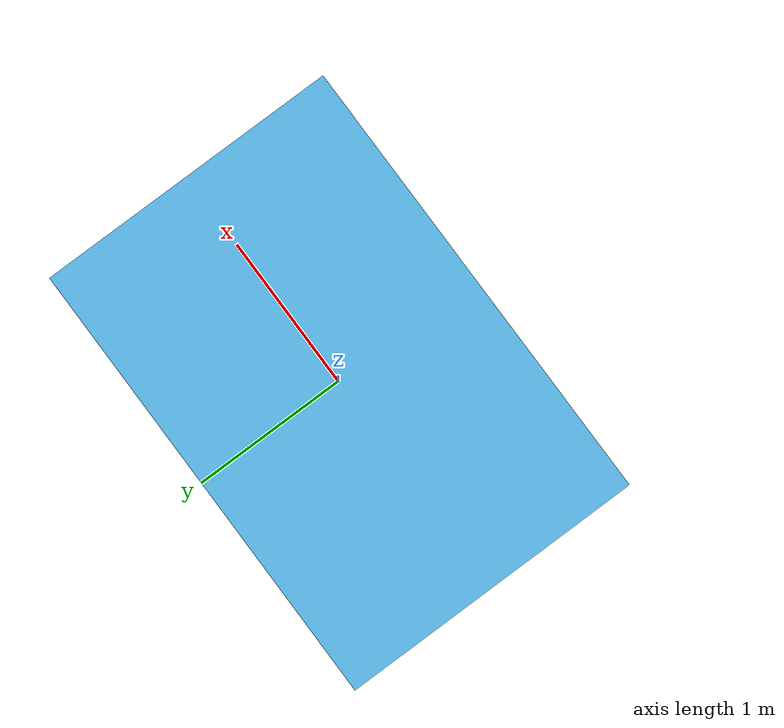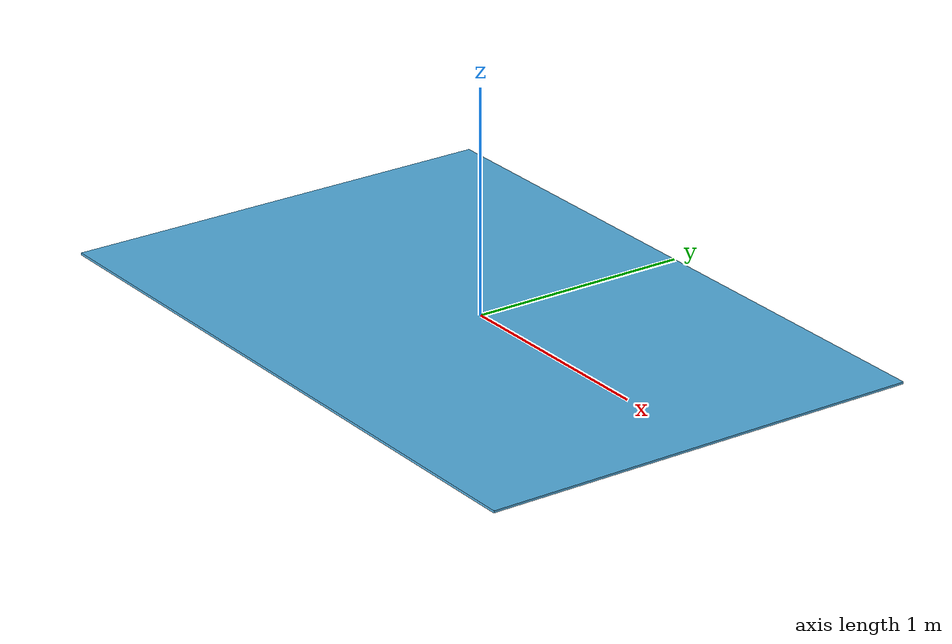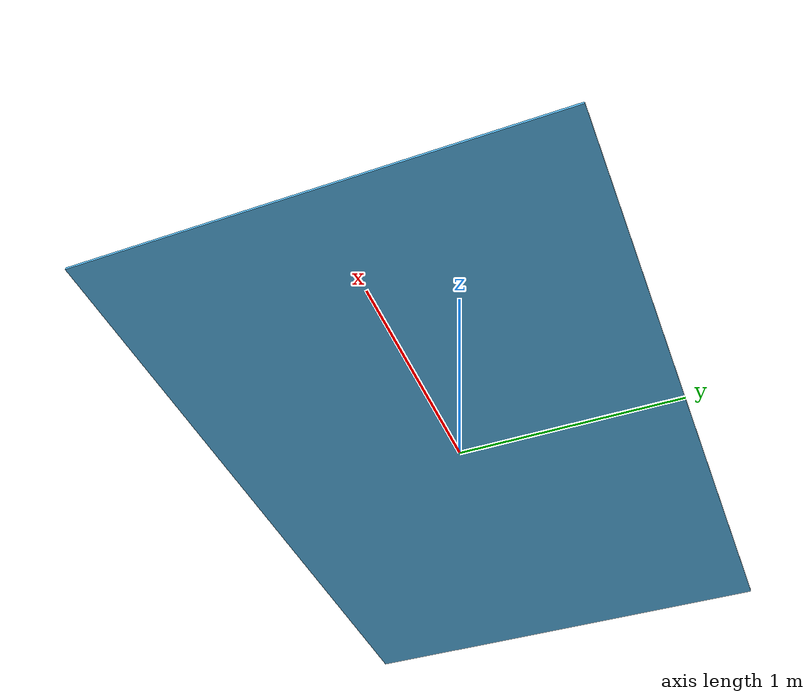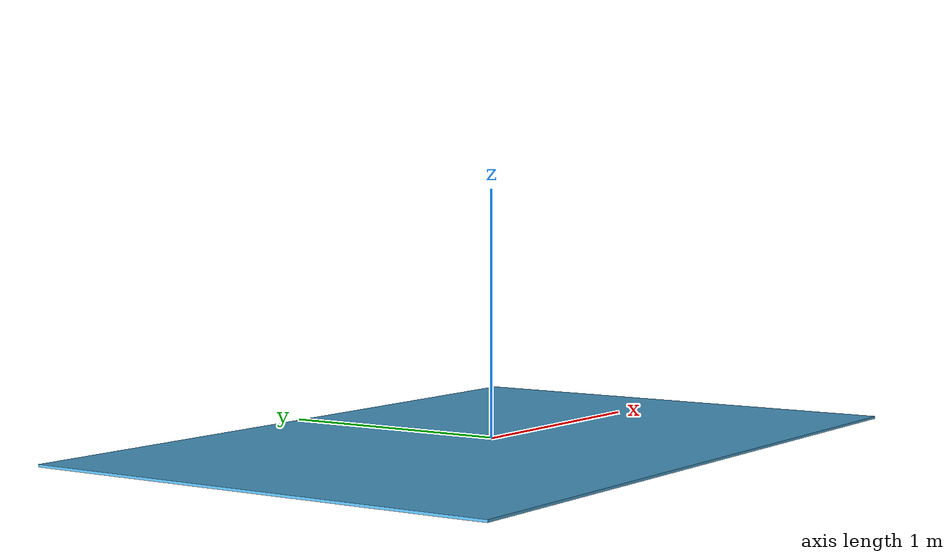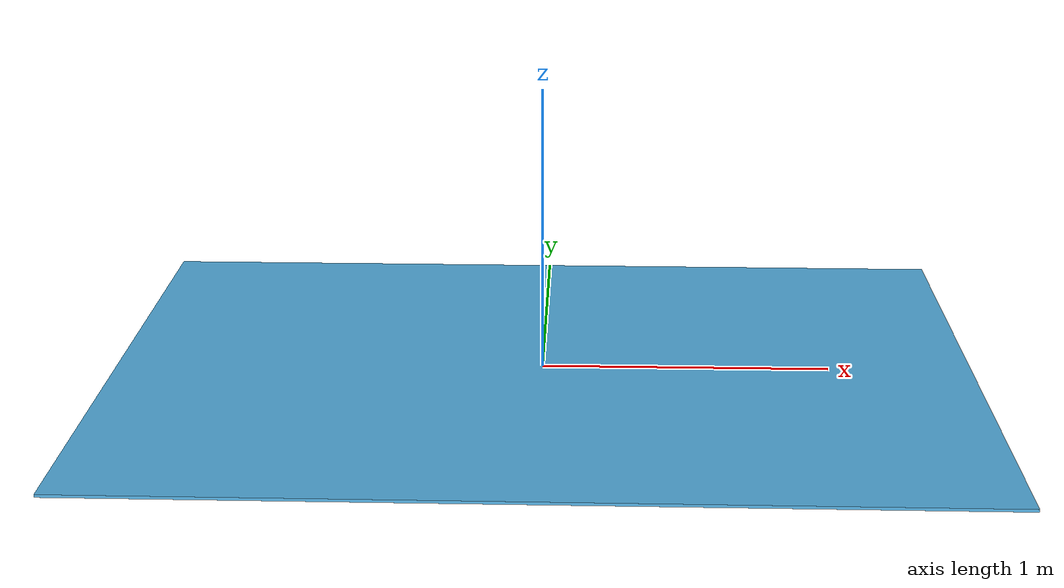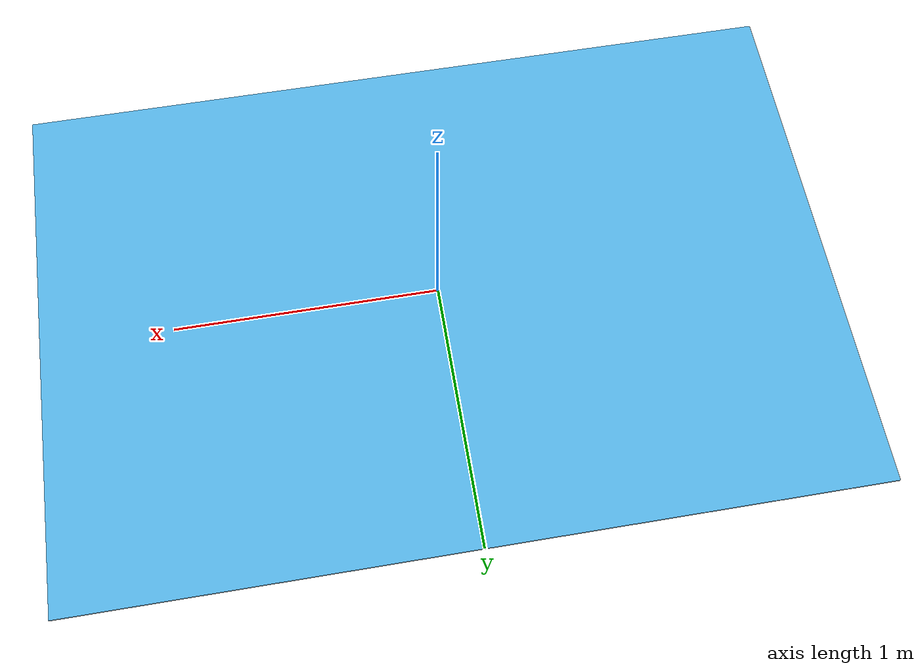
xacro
<?xml version="1.0"?>
<robot name="eurobot_table" xmlns:xacro="http://www.ros.org/wiki/xacro">

  <link name="map"/>

  <joint name="map_to_table_joint" type="fixed">
    <parent link="map"/>
    <child link="table_link"/>
    <origin xyz="0 0 0" rpy="0 0 0"/>
  </joint>

  <link name="table_link">
    <visual>
      <origin xyz="0 0 -0.005" rpy="0 0 0"/>
      <geometry>
        <box size="3.0 2.0 0.01"/>
      </geometry>
      <material name="table_texture">
        <texture filename="package://mon_paquet_description/my_image.png"/>
      </material>
    </visual>
    <collision>
      <origin xyz="0 0 -0.005" rpy="0 0 0"/>
      <geometry>
        <box size="3.0 2.0 0.01"/>
      </geometry>
    </collision>
  </link>

</robot>
